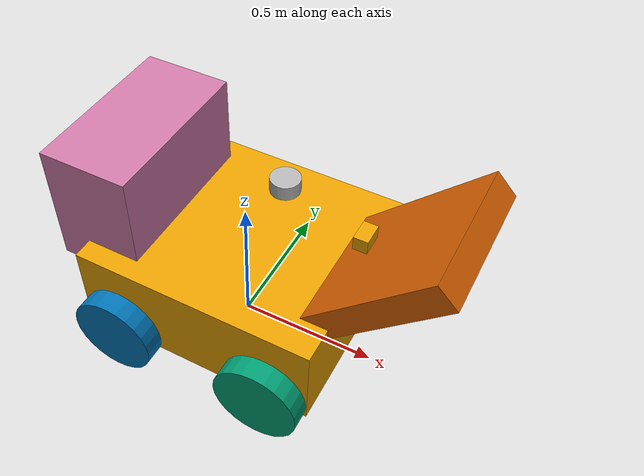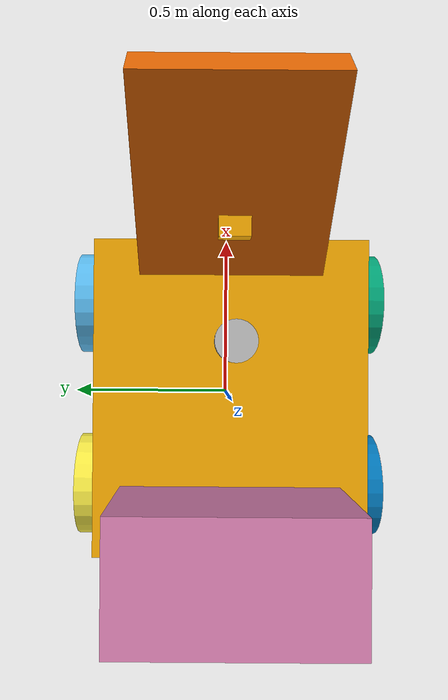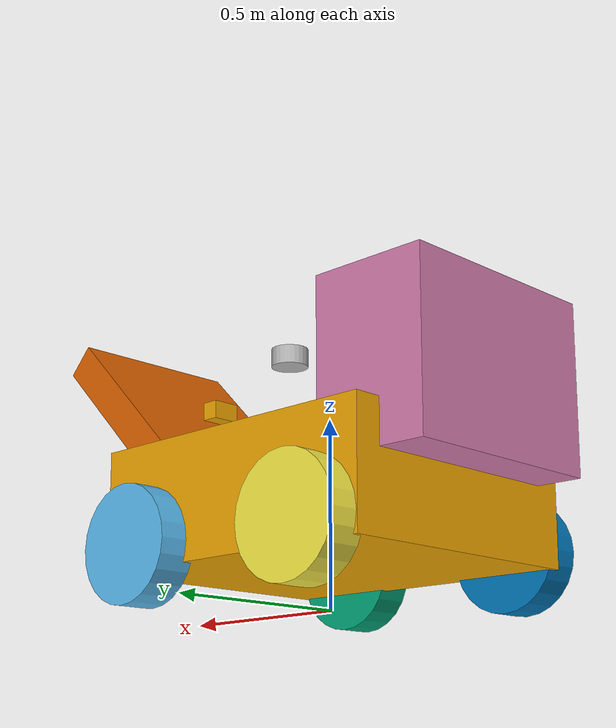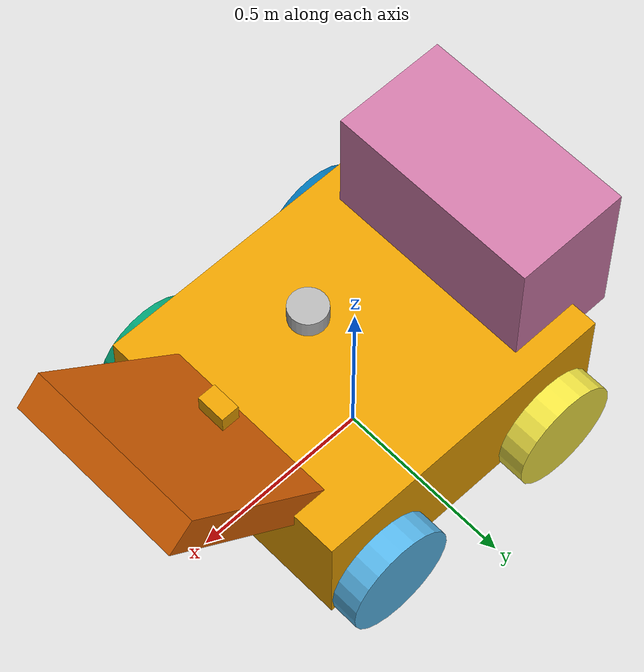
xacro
<?xml version="1.0"?>
<robot xmlns:xacro="http://www.ros.org/wiki/xacro" name="lunabotics_rover">
  <xacro:property name="wheel_r" value="0.1524"/><xacro:property name="wheel_w" value="0.10"/>
  <link name="base_link"><inertial><mass value="40"/><origin xyz="0 0 0"/><inertia ixx="2.6" ixy="0" ixz="0" iyy="2.9" iyz="0" izz="3.3"/></inertial><visual><origin xyz="0 0 0.26"/><geometry><box size="0.87 0.75 0.32"/></geometry></visual><collision><origin xyz="0 0 0.26"/><geometry><box size="0.87 0.75 0.32"/></geometry></collision></link>
  <xacro:macro name="wheel" params="name x y">
    <link name="${name}"><visual><geometry><cylinder radius="${wheel_r}" length="${wheel_w}"/></geometry><origin rpy="1.5708 0 0"/></visual><collision><geometry><cylinder radius="${wheel_r}" length="${wheel_w}"/></geometry><origin rpy="1.5708 0 0"/></collision></link>
    <joint name="${name}_joint" type="continuous"><parent link="base_link"/><child link="${name}"/><origin xyz="${x} ${y} 0.1524" rpy="0 0 0"/><axis xyz="0 1 0"/></joint>
  </xacro:macro>
  <xacro:wheel name="wheel_fl" x="0.28" y="0.40"/><xacro:wheel name="wheel_fr" x="0.28" y="-0.40"/><xacro:wheel name="wheel_rl" x="-0.28" y="0.40"/><xacro:wheel name="wheel_rr" x="-0.28" y="-0.40"/>
  <link name="conveyor"><visual><origin xyz="0.52 0 0.53" rpy="0 -0.78 0"/><geometry><box size="0.68 0.50 0.10"/></geometry></visual></link><joint name="conveyor_joint" type="fixed"><parent link="base_link"/><child link="conveyor"/></joint>
  <link name="rear_bucket"><visual><origin xyz="-0.40 0 0.53"/><geometry><box size="0.32 0.60 0.45"/></geometry></visual></link><joint name="rear_bucket_joint" type="fixed"><parent link="base_link"/><child link="rear_bucket"/></joint>
  <link name="lidar_link"><visual><geometry><cylinder radius="0.05" length="0.05"/></geometry></visual></link><joint name="lidar_joint" type="fixed"><parent link="base_link"/><child link="lidar_link"/><origin xyz="0.15 0 0.70"/></joint>
  <link name="camera_link"><visual><geometry><box size="0.05 0.08 0.05"/></geometry></visual></link><joint name="camera_joint" type="fixed"><parent link="base_link"/><child link="camera_link"/><origin xyz="0.43 0 0.60"/></joint>
  <gazebo reference="base_link"><plugin name="diff_drive" filename="libgazebo_ros_diff_drive.so"><ros><namespace>/</namespace></ros><left_joint>wheel_fl_joint</left_joint><left_joint>wheel_rl_joint</left_joint><right_joint>wheel_fr_joint</right_joint><right_joint>wheel_rr_joint</right_joint><wheel_separation>0.75</wheel_separation><wheel_diameter>0.3048</wheel_diameter><max_wheel_torque>20</max_wheel_torque><command_topic>cmd_vel</command_topic><odometry_topic>odom</odometry_topic><odometry_frame>odom</odometry_frame><robot_base_frame>base_link</robot_base_frame></plugin></gazebo>
  <gazebo reference="lidar_link"><sensor type="ray" name="rplidar"><update_rate>10</update_rate><ray><scan><horizontal><samples>720</samples><min_angle>-3.14159</min_angle><max_angle>3.14159</max_angle></horizontal></scan><range><min>0.05</min><max>18.0</max><resolution>0.01</resolution></range></ray><plugin name="laser" filename="libgazebo_ros_ray_sensor.so"><ros><remapping>~/out:=scan</remapping></ros><output_type>sensor_msgs/LaserScan</output_type><frame_name>lidar_link</frame_name></plugin></sensor></gazebo>
  <gazebo reference="camera_link"><sensor type="camera" name="rgb_camera"><update_rate>20</update_rate><camera><horizontal_fov>1.047</horizontal_fov><image><width>640</width><height>480</height><format>R8G8B8</format></image></camera><plugin name="camera" filename="libgazebo_ros_camera.so"><ros><namespace>/camera</namespace></ros><camera_name>front</camera_name><frame_name>camera_link</frame_name></plugin></sensor></gazebo>
</robot>
